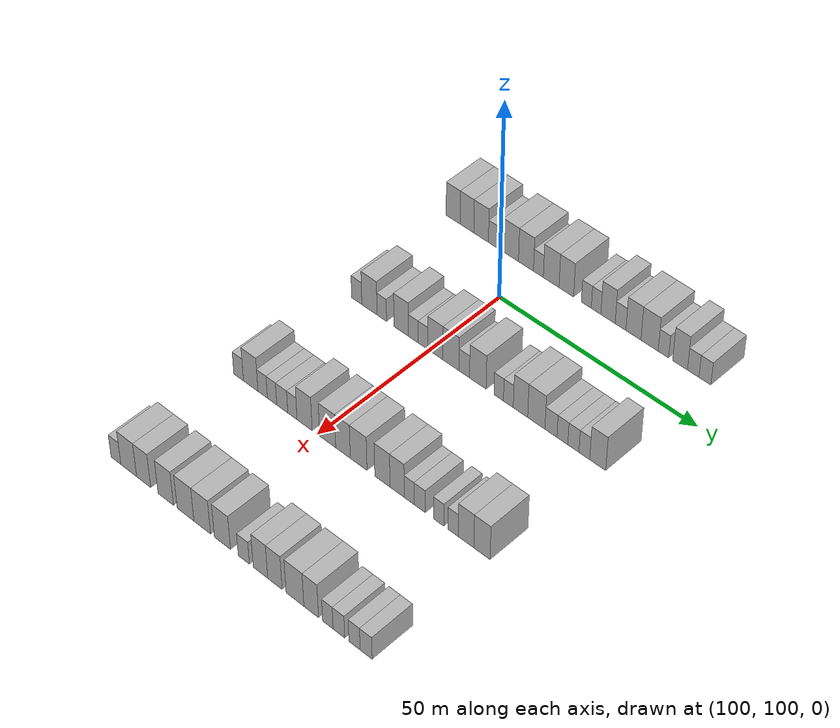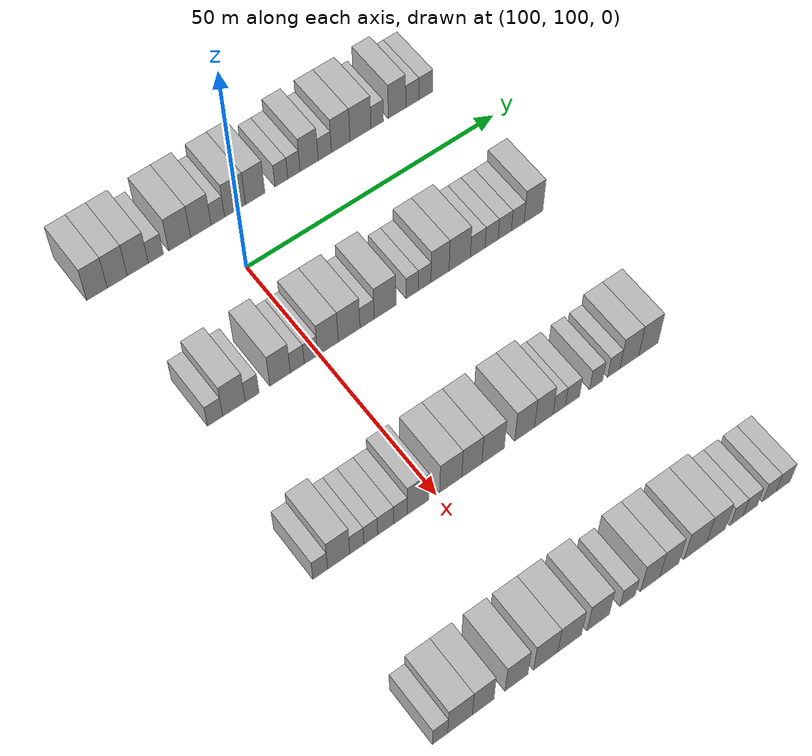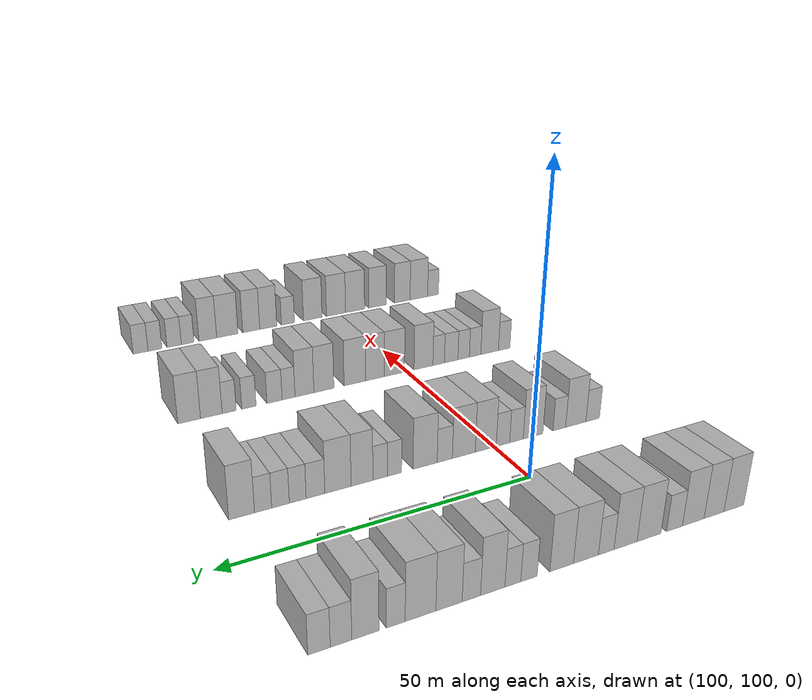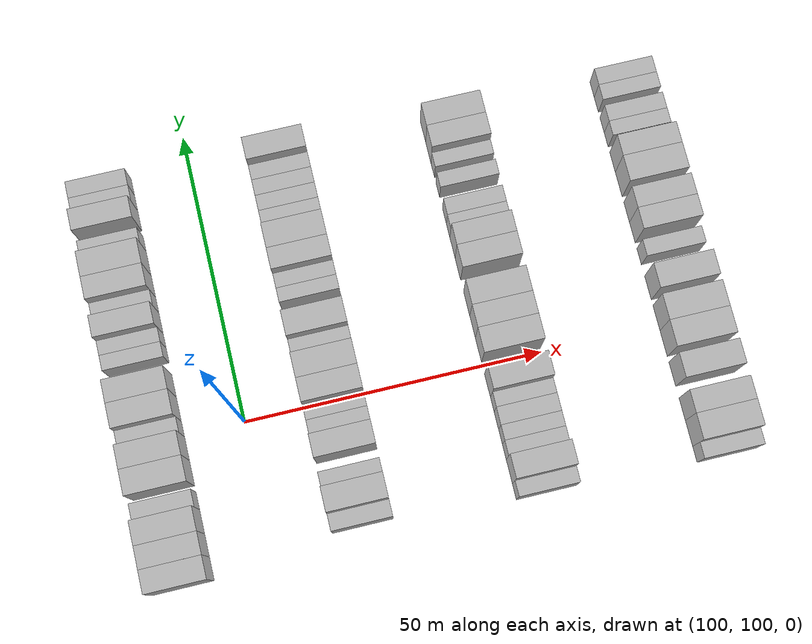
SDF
<sdf version="1.6">
 <world name="default">
  <model name="building_593">
   <static>1</static>
   <pose>85.0000 78.1926 0 0.000000 0.000000 0.000000</pose>
   <link name="link">
    <pose>0 0 4.50 0 0 0</pose>
    <collision name="collision"><geometry><box><size>10.0000 3.8364 9.0000</size></box></geometry></collision>
    <visual name="visual">
     <cast_shadows>0</cast_shadows>
     <geometry><box><size>10.0000 3.8364 9.0000</size></box></geometry>
     <material>
      <script>
       <uri>model://HANNAS_wall/materials/scripts</uri>
       <uri>model://HANNAS_wall/materials/textures</uri>
       <name>vrc/HANNAS_wall</name>
      </script>
     </material>
    </visual>
   </link>
  </model>
  <model name="building_594">
   <static>1</static>
   <pose>85.0000 81.9840 0 0.000000 0.000000 0.000000</pose>
   <link name="link">
    <pose>0 0 4.50 0 0 0</pose>
    <collision name="collision"><geometry><box><size>10.0000 3.7462 9.0000</size></box></geometry></collision>
    <visual name="visual">
     <cast_shadows>0</cast_shadows>
     <geometry><box><size>10.0000 3.7462 9.0000</size></box></geometry>
     <material>
      <script>
       <uri>model://HANNAS_wall/materials/scripts</uri>
       <uri>model://HANNAS_wall/materials/textures</uri>
       <name>vrc/HANNAS_wall</name>
      </script>
     </material>
    </visual>
   </link>
  </model>
  <model name="building_595">
   <static>1</static>
   <pose>85.0000 85.8545 0 0.000000 0.000000 0.000000</pose>
   <link name="link">
    <pose>0 0 4.50 0 0 0</pose>
    <collision name="collision"><geometry><box><size>10.0000 3.9948 9.0000</size></box></geometry></collision>
    <visual name="visual">
     <cast_shadows>0</cast_shadows>
     <geometry><box><size>10.0000 3.9948 9.0000</size></box></geometry>
     <material>
      <script>
       <uri>model://HANNAS_wall/materials/scripts</uri>
       <uri>model://HANNAS_wall/materials/textures</uri>
       <name>vrc/HANNAS_wall</name>
      </script>
     </material>
    </visual>
   </link>
  </model>
  <model name="building_596">
   <static>1</static>
   <pose>85.0000 89.2899 0 0.000000 0.000000 0.000000</pose>
   <link name="link">
    <pose>0 0 3.00 0 0 0</pose>
    <collision name="collision"><geometry><box><size>10.0000 2.8761 6.0000</size></box></geometry></collision>
    <visual name="visual">
     <cast_shadows>0</cast_shadows>
     <geometry><box><size>10.0000 2.8761 6.0000</size></box></geometry>
     <material>
      <script>
       <uri>model://HANNAS_wall/materials/scripts</uri>
       <uri>model://HANNAS_wall/materials/textures</uri>
       <name>vrc/HANNAS_wall</name>
      </script>
     </material>
    </visual>
   </link>
  </model>
  <model name="building_597">
   <static>1</static>
   <pose>85.0000 93.8392 0 0.000000 0.000000 0.000000</pose>
   <link name="link">
    <pose>0 0 4.50 0 0 0</pose>
    <collision name="collision"><geometry><box><size>10.0000 4.2224 9.0000</size></box></geometry></collision>
    <visual name="visual">
     <cast_shadows>0</cast_shadows>
     <geometry><box><size>10.0000 4.2224 9.0000</size></box></geometry>
     <material>
      <script>
       <uri>model://HANNAS_wall/materials/scripts</uri>
       <uri>model://HANNAS_wall/materials/textures</uri>
       <name>vrc/HANNAS_wall</name>
      </script>
     </material>
    </visual>
   </link>
  </model>
  <model name="building_598">
   <static>1</static>
   <pose>85.0000 97.9377 0 0.000000 0.000000 0.000000</pose>
   <link name="link">
    <pose>0 0 4.50 0 0 0</pose>
    <collision name="collision"><geometry><box><size>10.0000 3.9747 9.0000</size></box></geometry></collision>
    <visual name="visual">
     <cast_shadows>0</cast_shadows>
     <geometry><box><size>10.0000 3.9747 9.0000</size></box></geometry>
     <material>
      <script>
       <uri>model://HANNAS_wall/materials/scripts</uri>
       <uri>model://HANNAS_wall/materials/textures</uri>
       <name>vrc/HANNAS_wall</name>
      </script>
     </material>
    </visual>
   </link>
  </model>
  <model name="building_599">
   <static>1</static>
   <pose>85.0000 101.2335 0 0.000000 0.000000 0.000000</pose>
   <link name="link">
    <pose>0 0 3.00 0 0 0</pose>
    <collision name="collision"><geometry><box><size>10.0000 2.6170 6.0000</size></box></geometry></collision>
    <visual name="visual">
     <cast_shadows>0</cast_shadows>
     <geometry><box><size>10.0000 2.6170 6.0000</size></box></geometry>
     <material>
      <script>
       <uri>model://HANNAS_wall/materials/scripts</uri>
       <uri>model://HANNAS_wall/materials/textures</uri>
       <name>vrc/HANNAS_wall</name>
      </script>
     </material>
    </visual>
   </link>
  </model>
  <model name="building_600">
   <static>1</static>
   <pose>85.0000 104.6037 0 0.000000 0.000000 0.000000</pose>
   <link name="link">
    <pose>0 0 4.50 0 0 0</pose>
    <collision name="collision"><geometry><box><size>10.0000 4.1233 9.0000</size></box></geometry></collision>
    <visual name="visual">
     <cast_shadows>0</cast_shadows>
     <geometry><box><size>10.0000 4.1233 9.0000</size></box></geometry>
     <material>
      <script>
       <uri>model://HANNAS_wall/materials/scripts</uri>
       <uri>model://HANNAS_wall/materials/textures</uri>
       <name>vrc/HANNAS_wall</name>
      </script>
     </material>
    </visual>
   </link>
  </model>
  <model name="building_601">
   <static>1</static>
   <pose>85.0000 108.5740 0 0.000000 0.000000 0.000000</pose>
   <link name="link">
    <pose>0 0 4.50 0 0 0</pose>
    <collision name="collision"><geometry><box><size>10.0000 3.8174 9.0000</size></box></geometry></collision>
    <visual name="visual">
     <cast_shadows>0</cast_shadows>
     <geometry><box><size>10.0000 3.8174 9.0000</size></box></geometry>
     <material>
      <script>
       <uri>model://HANNAS_wall/materials/scripts</uri>
       <uri>model://HANNAS_wall/materials/textures</uri>
       <name>vrc/HANNAS_wall</name>
      </script>
     </material>
    </visual>
   </link>
  </model>
  <model name="building_602">
   <static>1</static>
   <pose>85.0000 113.7601 0 0.000000 0.000000 0.000000</pose>
   <link name="link">
    <pose>0 0 3.00 0 0 0</pose>
    <collision name="collision"><geometry><box><size>10.0000 2.5548 6.0000</size></box></geometry></collision>
    <visual name="visual">
     <cast_shadows>0</cast_shadows>
     <geometry><box><size>10.0000 2.5548 6.0000</size></box></geometry>
     <material>
      <script>
       <uri>model://HANNAS_wall/materials/scripts</uri>
       <uri>model://HANNAS_wall/materials/textures</uri>
       <name>vrc/HANNAS_wall</name>
      </script>
     </material>
    </visual>
   </link>
  </model>
  <model name="building_603">
   <static>1</static>
   <pose>85.0000 116.2626 0 0.000000 0.000000 0.000000</pose>
   <link name="link">
    <pose>0 0 3.00 0 0 0</pose>
    <collision name="collision"><geometry><box><size>10.0000 2.4502 6.0000</size></box></geometry></collision>
    <visual name="visual">
     <cast_shadows>0</cast_shadows>
     <geometry><box><size>10.0000 2.4502 6.0000</size></box></geometry>
     <material>
      <script>
       <uri>model://HANNAS_wall/materials/scripts</uri>
       <uri>model://HANNAS_wall/materials/textures</uri>
       <name>vrc/HANNAS_wall</name>
      </script>
     </material>
    </visual>
   </link>
  </model>
  <model name="building_604">
   <static>1</static>
   <pose>85.0000 119.3193 0 0.000000 0.000000 0.000000</pose>
   <link name="link">
    <pose>0 0 4.50 0 0 0</pose>
    <collision name="collision"><geometry><box><size>10.0000 3.6633 9.0000</size></box></geometry></collision>
    <visual name="visual">
     <cast_shadows>0</cast_shadows>
     <geometry><box><size>10.0000 3.6633 9.0000</size></box></geometry>
     <material>
      <script>
       <uri>model://HANNAS_wall/materials/scripts</uri>
       <uri>model://HANNAS_wall/materials/textures</uri>
       <name>vrc/HANNAS_wall</name>
      </script>
     </material>
    </visual>
   </link>
  </model>
  <model name="building_605">
   <static>1</static>
   <pose>85.0000 122.5096 0 0.000000 0.000000 0.000000</pose>
   <link name="link">
    <pose>0 0 3.00 0 0 0</pose>
    <collision name="collision"><geometry><box><size>10.0000 2.7173 6.0000</size></box></geometry></collision>
    <visual name="visual">
     <cast_shadows>0</cast_shadows>
     <geometry><box><size>10.0000 2.7173 6.0000</size></box></geometry>
     <material>
      <script>
       <uri>model://HANNAS_wall/materials/scripts</uri>
       <uri>model://HANNAS_wall/materials/textures</uri>
       <name>vrc/HANNAS_wall</name>
      </script>
     </material>
    </visual>
   </link>
  </model>
  <model name="building_606">
   <static>1</static>
   <pose>85.0000 125.7648 0 0.000000 0.000000 0.000000</pose>
   <link name="link">
    <pose>0 0 4.50 0 0 0</pose>
    <collision name="collision"><geometry><box><size>10.0000 3.7931 9.0000</size></box></geometry></collision>
    <visual name="visual">
     <cast_shadows>0</cast_shadows>
     <geometry><box><size>10.0000 3.7931 9.0000</size></box></geometry>
     <material>
      <script>
       <uri>model://HANNAS_wall/materials/scripts</uri>
       <uri>model://HANNAS_wall/materials/textures</uri>
       <name>vrc/HANNAS_wall</name>
      </script>
     </material>
    </visual>
   </link>
  </model>
  <model name="building_607">
   <static>1</static>
   <pose>85.0000 129.8227 0 0.000000 0.000000 0.000000</pose>
   <link name="link">
    <pose>0 0 4.50 0 0 0</pose>
    <collision name="collision"><geometry><box><size>10.0000 4.3227 9.0000</size></box></geometry></collision>
    <visual name="visual">
     <cast_shadows>0</cast_shadows>
     <geometry><box><size>10.0000 4.3227 9.0000</size></box></geometry>
     <material>
      <script>
       <uri>model://HANNAS_wall/materials/scripts</uri>
       <uri>model://HANNAS_wall/materials/textures</uri>
       <name>vrc/HANNAS_wall</name>
      </script>
     </material>
    </visual>
   </link>
  </model>
  <model name="building_608">
   <static>1</static>
   <pose>85.0000 133.2764 0 0.000000 0.000000 0.000000</pose>
   <link name="link">
    <pose>0 0 3.00 0 0 0</pose>
    <collision name="collision"><geometry><box><size>10.0000 2.5848 6.0000</size></box></geometry></collision>
    <visual name="visual">
     <cast_shadows>0</cast_shadows>
     <geometry><box><size>10.0000 2.5848 6.0000</size></box></geometry>
     <material>
      <script>
       <uri>model://HANNAS_wall/materials/scripts</uri>
       <uri>model://HANNAS_wall/materials/textures</uri>
       <name>vrc/HANNAS_wall</name>
      </script>
     </material>
    </visual>
   </link>
  </model>
  <model name="building_609">
   <static>1</static>
   <pose>85.0000 137.3921 0 0.000000 0.000000 0.000000</pose>
   <link name="link">
    <pose>0 0 4.50 0 0 0</pose>
    <collision name="collision"><geometry><box><size>10.0000 3.6466 9.0000</size></box></geometry></collision>
    <visual name="visual">
     <cast_shadows>0</cast_shadows>
     <geometry><box><size>10.0000 3.6466 9.0000</size></box></geometry>
     <material>
      <script>
       <uri>model://HANNAS_wall/materials/scripts</uri>
       <uri>model://HANNAS_wall/materials/textures</uri>
       <name>vrc/HANNAS_wall</name>
      </script>
     </material>
    </visual>
   </link>
  </model>
  <model name="building_610">
   <static>1</static>
   <pose>85.0000 140.6232 0 0.000000 0.000000 0.000000</pose>
   <link name="link">
    <pose>0 0 3.00 0 0 0</pose>
    <collision name="collision"><geometry><box><size>10.0000 2.8156 6.0000</size></box></geometry></collision>
    <visual name="visual">
     <cast_shadows>0</cast_shadows>
     <geometry><box><size>10.0000 2.8156 6.0000</size></box></geometry>
     <material>
      <script>
       <uri>model://HANNAS_wall/materials/scripts</uri>
       <uri>model://HANNAS_wall/materials/textures</uri>
       <name>vrc/HANNAS_wall</name>
      </script>
     </material>
    </visual>
   </link>
  </model>
  <model name="building_611">
   <static>1</static>
   <pose>85.0000 143.4702 0 0.000000 0.000000 0.000000</pose>
   <link name="link">
    <pose>0 0 3.00 0 0 0</pose>
    <collision name="collision"><geometry><box><size>10.0000 2.8785 6.0000</size></box></geometry></collision>
    <visual name="visual">
     <cast_shadows>0</cast_shadows>
     <geometry><box><size>10.0000 2.8785 6.0000</size></box></geometry>
     <material>
      <script>
       <uri>model://HANNAS_wall/materials/scripts</uri>
       <uri>model://HANNAS_wall/materials/textures</uri>
       <name>vrc/HANNAS_wall</name>
      </script>
     </material>
    </visual>
   </link>
  </model>
  <model name="building_825">
   <static>1</static>
   <pose>115.0000 80.5398 0 0.000000 0.000000 0.000000</pose>
   <link name="link">
    <pose>0 0 3.00 0 0 0</pose>
    <collision name="collision"><geometry><box><size>10.0000 2.7964 6.0000</size></box></geometry></collision>
    <visual name="visual">
     <cast_shadows>0</cast_shadows>
     <geometry><box><size>10.0000 2.7964 6.0000</size></box></geometry>
     <material>
      <script>
       <uri>model://HANNAS_wall/materials/scripts</uri>
       <uri>model://HANNAS_wall/materials/textures</uri>
       <name>vrc/HANNAS_wall</name>
      </script>
     </material>
    </visual>
   </link>
  </model>
  <model name="building_826">
   <static>1</static>
   <pose>115.0000 84.0176 0 0.000000 0.000000 0.000000</pose>
   <link name="link">
    <pose>0 0 4.50 0 0 0</pose>
    <collision name="collision"><geometry><box><size>10.0000 4.1591 9.0000</size></box></geometry></collision>
    <visual name="visual">
     <cast_shadows>0</cast_shadows>
     <geometry><box><size>10.0000 4.1591 9.0000</size></box></geometry>
     <material>
      <script>
       <uri>model://HANNAS_wall/materials/scripts</uri>
       <uri>model://HANNAS_wall/materials/textures</uri>
       <name>vrc/HANNAS_wall</name>
      </script>
     </material>
    </visual>
   </link>
  </model>
  <model name="building_827">
   <static>1</static>
   <pose>115.0000 87.3795 0 0.000000 0.000000 0.000000</pose>
   <link name="link">
    <pose>0 0 3.00 0 0 0</pose>
    <collision name="collision"><geometry><box><size>10.0000 2.5647 6.0000</size></box></geometry></collision>
    <visual name="visual">
     <cast_shadows>0</cast_shadows>
     <geometry><box><size>10.0000 2.5647 6.0000</size></box></geometry>
     <material>
      <script>
       <uri>model://HANNAS_wall/materials/scripts</uri>
       <uri>model://HANNAS_wall/materials/textures</uri>
       <name>vrc/HANNAS_wall</name>
      </script>
     </material>
    </visual>
   </link>
  </model>
  <model name="building_828">
   <static>1</static>
   <pose>115.0000 92.5906 0 0.000000 0.000000 0.000000</pose>
   <link name="link">
    <pose>0 0 4.50 0 0 0</pose>
    <collision name="collision"><geometry><box><size>10.0000 3.8575 9.0000</size></box></geometry></collision>
    <visual name="visual">
     <cast_shadows>0</cast_shadows>
     <geometry><box><size>10.0000 3.8575 9.0000</size></box></geometry>
     <material>
      <script>
       <uri>model://HANNAS_wall/materials/scripts</uri>
       <uri>model://HANNAS_wall/materials/textures</uri>
       <name>vrc/HANNAS_wall</name>
      </script>
     </material>
    </visual>
   </link>
  </model>
  <model name="building_829">
   <static>1</static>
   <pose>115.0000 95.8326 0 0.000000 0.000000 0.000000</pose>
   <link name="link">
    <pose>0 0 3.00 0 0 0</pose>
    <collision name="collision"><geometry><box><size>10.0000 2.6265 6.0000</size></box></geometry></collision>
    <visual name="visual">
     <cast_shadows>0</cast_shadows>
     <geometry><box><size>10.0000 2.6265 6.0000</size></box></geometry>
     <material>
      <script>
       <uri>model://HANNAS_wall/materials/scripts</uri>
       <uri>model://HANNAS_wall/materials/textures</uri>
       <name>vrc/HANNAS_wall</name>
      </script>
     </material>
    </visual>
   </link>
  </model>
  <model name="building_830">
   <static>1</static>
   <pose>115.0000 98.4275 0 0.000000 0.000000 0.000000</pose>
   <link name="link">
    <pose>0 0 3.00 0 0 0</pose>
    <collision name="collision"><geometry><box><size>10.0000 2.5635 6.0000</size></box></geometry></collision>
    <visual name="visual">
     <cast_shadows>0</cast_shadows>
     <geometry><box><size>10.0000 2.5635 6.0000</size></box></geometry>
     <material>
      <script>
       <uri>model://HANNAS_wall/materials/scripts</uri>
       <uri>model://HANNAS_wall/materials/textures</uri>
       <name>vrc/HANNAS_wall</name>
      </script>
     </material>
    </visual>
   </link>
  </model>
  <model name="building_831">
   <static>1</static>
   <pose>115.0000 101.6805 0 0.000000 0.000000 0.000000</pose>
   <link name="link">
    <pose>0 0 4.50 0 0 0</pose>
    <collision name="collision"><geometry><box><size>10.0000 3.9424 9.0000</size></box></geometry></collision>
    <visual name="visual">
     <cast_shadows>0</cast_shadows>
     <geometry><box><size>10.0000 3.9424 9.0000</size></box></geometry>
     <material>
      <script>
       <uri>model://HANNAS_wall/materials/scripts</uri>
       <uri>model://HANNAS_wall/materials/textures</uri>
       <name>vrc/HANNAS_wall</name>
      </script>
     </material>
    </visual>
   </link>
  </model>
  <model name="building_832">
   <static>1</static>
   <pose>115.0000 105.7479 0 0.000000 0.000000 0.000000</pose>
   <link name="link">
    <pose>0 0 4.50 0 0 0</pose>
    <collision name="collision"><geometry><box><size>10.0000 4.1924 9.0000</size></box></geometry></collision>
    <visual name="visual">
     <cast_shadows>0</cast_shadows>
     <geometry><box><size>10.0000 4.1924 9.0000</size></box></geometry>
     <material>
      <script>
       <uri>model://HANNAS_wall/materials/scripts</uri>
       <uri>model://HANNAS_wall/materials/textures</uri>
       <name>vrc/HANNAS_wall</name>
      </script>
     </material>
    </visual>
   </link>
  </model>
  <model name="building_833">
   <static>1</static>
   <pose>115.0000 109.2181 0 0.000000 0.000000 0.000000</pose>
   <link name="link">
    <pose>0 0 3.00 0 0 0</pose>
    <collision name="collision"><geometry><box><size>10.0000 2.7480 6.0000</size></box></geometry></collision>
    <visual name="visual">
     <cast_shadows>0</cast_shadows>
     <geometry><box><size>10.0000 2.7480 6.0000</size></box></geometry>
     <material>
      <script>
       <uri>model://HANNAS_wall/materials/scripts</uri>
       <uri>model://HANNAS_wall/materials/textures</uri>
       <name>vrc/HANNAS_wall</name>
      </script>
     </material>
    </visual>
   </link>
  </model>
  <model name="building_834">
   <static>1</static>
   <pose>115.0000 112.7290 0 0.000000 0.000000 0.000000</pose>
   <link name="link">
    <pose>0 0 4.50 0 0 0</pose>
    <collision name="collision"><geometry><box><size>10.0000 4.2738 9.0000</size></box></geometry></collision>
    <visual name="visual">
     <cast_shadows>0</cast_shadows>
     <geometry><box><size>10.0000 4.2738 9.0000</size></box></geometry>
     <material>
      <script>
       <uri>model://HANNAS_wall/materials/scripts</uri>
       <uri>model://HANNAS_wall/materials/textures</uri>
       <name>vrc/HANNAS_wall</name>
      </script>
     </material>
    </visual>
   </link>
  </model>
  <model name="building_835">
   <static>1</static>
   <pose>115.0000 118.0733 0 0.000000 0.000000 0.000000</pose>
   <link name="link">
    <pose>0 0 3.00 0 0 0</pose>
    <collision name="collision"><geometry><box><size>10.0000 2.4148 6.0000</size></box></geometry></collision>
    <visual name="visual">
     <cast_shadows>0</cast_shadows>
     <geometry><box><size>10.0000 2.4148 6.0000</size></box></geometry>
     <material>
      <script>
       <uri>model://HANNAS_wall/materials/scripts</uri>
       <uri>model://HANNAS_wall/materials/textures</uri>
       <name>vrc/HANNAS_wall</name>
      </script>
     </material>
    </visual>
   </link>
  </model>
  <model name="building_836">
   <static>1</static>
   <pose>115.0000 120.5264 0 0.000000 0.000000 0.000000</pose>
   <link name="link">
    <pose>0 0 3.00 0 0 0</pose>
    <collision name="collision"><geometry><box><size>10.0000 2.4913 6.0000</size></box></geometry></collision>
    <visual name="visual">
     <cast_shadows>0</cast_shadows>
     <geometry><box><size>10.0000 2.4913 6.0000</size></box></geometry>
     <material>
      <script>
       <uri>model://HANNAS_wall/materials/scripts</uri>
       <uri>model://HANNAS_wall/materials/textures</uri>
       <name>vrc/HANNAS_wall</name>
      </script>
     </material>
    </visual>
   </link>
  </model>
  <model name="building_837">
   <static>1</static>
   <pose>115.0000 123.5885 0 0.000000 0.000000 0.000000</pose>
   <link name="link">
    <pose>0 0 4.50 0 0 0</pose>
    <collision name="collision"><geometry><box><size>10.0000 3.6329 9.0000</size></box></geometry></collision>
    <visual name="visual">
     <cast_shadows>0</cast_shadows>
     <geometry><box><size>10.0000 3.6329 9.0000</size></box></geometry>
     <material>
      <script>
       <uri>model://HANNAS_wall/materials/scripts</uri>
       <uri>model://HANNAS_wall/materials/textures</uri>
       <name>vrc/HANNAS_wall</name>
      </script>
     </material>
    </visual>
   </link>
  </model>
  <model name="building_838">
   <static>1</static>
   <pose>115.0000 127.5510 0 0.000000 0.000000 0.000000</pose>
   <link name="link">
    <pose>0 0 4.50 0 0 0</pose>
    <collision name="collision"><geometry><box><size>10.0000 4.2920 9.0000</size></box></geometry></collision>
    <visual name="visual">
     <cast_shadows>0</cast_shadows>
     <geometry><box><size>10.0000 4.2920 9.0000</size></box></geometry>
     <material>
      <script>
       <uri>model://HANNAS_wall/materials/scripts</uri>
       <uri>model://HANNAS_wall/materials/textures</uri>
       <name>vrc/HANNAS_wall</name>
      </script>
     </material>
    </visual>
   </link>
  </model>
  <model name="building_839">
   <static>1</static>
   <pose>115.0000 131.1942 0 0.000000 0.000000 0.000000</pose>
   <link name="link">
    <pose>0 0 3.00 0 0 0</pose>
    <collision name="collision"><geometry><box><size>10.0000 2.9946 6.0000</size></box></geometry></collision>
    <visual name="visual">
     <cast_shadows>0</cast_shadows>
     <geometry><box><size>10.0000 2.9946 6.0000</size></box></geometry>
     <material>
      <script>
       <uri>model://HANNAS_wall/materials/scripts</uri>
       <uri>model://HANNAS_wall/materials/textures</uri>
       <name>vrc/HANNAS_wall</name>
      </script>
     </material>
    </visual>
   </link>
  </model>
  <model name="building_840">
   <static>1</static>
   <pose>115.0000 134.0180 0 0.000000 0.000000 0.000000</pose>
   <link name="link">
    <pose>0 0 3.00 0 0 0</pose>
    <collision name="collision"><geometry><box><size>10.0000 2.6530 6.0000</size></box></geometry></collision>
    <visual name="visual">
     <cast_shadows>0</cast_shadows>
     <geometry><box><size>10.0000 2.6530 6.0000</size></box></geometry>
     <material>
      <script>
       <uri>model://HANNAS_wall/materials/scripts</uri>
       <uri>model://HANNAS_wall/materials/textures</uri>
       <name>vrc/HANNAS_wall</name>
      </script>
     </material>
    </visual>
   </link>
  </model>
  <model name="building_841">
   <static>1</static>
   <pose>115.0000 136.7103 0 0.000000 0.000000 0.000000</pose>
   <link name="link">
    <pose>0 0 3.00 0 0 0</pose>
    <collision name="collision"><geometry><box><size>10.0000 2.7317 6.0000</size></box></geometry></collision>
    <visual name="visual">
     <cast_shadows>0</cast_shadows>
     <geometry><box><size>10.0000 2.7317 6.0000</size></box></geometry>
     <material>
      <script>
       <uri>model://HANNAS_wall/materials/scripts</uri>
       <uri>model://HANNAS_wall/materials/textures</uri>
       <name>vrc/HANNAS_wall</name>
      </script>
     </material>
    </visual>
   </link>
  </model>
  <model name="building_842">
   <static>1</static>
   <pose>115.0000 139.3892 0 0.000000 0.000000 0.000000</pose>
   <link name="link">
    <pose>0 0 3.00 0 0 0</pose>
    <collision name="collision"><geometry><box><size>10.0000 2.6261 6.0000</size></box></geometry></collision>
    <visual name="visual">
     <cast_shadows>0</cast_shadows>
     <geometry><box><size>10.0000 2.6261 6.0000</size></box></geometry>
     <material>
      <script>
       <uri>model://HANNAS_wall/materials/scripts</uri>
       <uri>model://HANNAS_wall/materials/textures</uri>
       <name>vrc/HANNAS_wall</name>
      </script>
     </material>
    </visual>
   </link>
  </model>
  <model name="building_843">
   <static>1</static>
   <pose>115.0000 142.6411 0 0.000000 0.000000 0.000000</pose>
   <link name="link">
    <pose>0 0 4.50 0 0 0</pose>
    <collision name="collision"><geometry><box><size>10.0000 3.8777 9.0000</size></box></geometry></collision>
    <visual name="visual">
     <cast_shadows>0</cast_shadows>
     <geometry><box><size>10.0000 3.8777 9.0000</size></box></geometry>
     <material>
      <script>
       <uri>model://HANNAS_wall/materials/scripts</uri>
       <uri>model://HANNAS_wall/materials/textures</uri>
       <name>vrc/HANNAS_wall</name>
      </script>
     </material>
    </visual>
   </link>
  </model>
  <model name="building_1050">
   <static>1</static>
   <pose>145.0000 78.7910 0 0.000000 0.000000 0.000000</pose>
   <link name="link">
    <pose>0 0 3.00 0 0 0</pose>
    <collision name="collision"><geometry><box><size>10.0000 2.6321 6.0000</size></box></geometry></collision>
    <visual name="visual">
     <cast_shadows>0</cast_shadows>
     <geometry><box><size>10.0000 2.6321 6.0000</size></box></geometry>
     <material>
      <script>
       <uri>model://HANNAS_wall/materials/scripts</uri>
       <uri>model://HANNAS_wall/materials/textures</uri>
       <name>vrc/HANNAS_wall</name>
      </script>
     </material>
    </visual>
   </link>
  </model>
  <model name="building_1051">
   <static>1</static>
   <pose>145.0000 82.1066 0 0.000000 0.000000 0.000000</pose>
   <link name="link">
    <pose>0 0 4.50 0 0 0</pose>
    <collision name="collision"><geometry><box><size>10.0000 3.9990 9.0000</size></box></geometry></collision>
    <visual name="visual">
     <cast_shadows>0</cast_shadows>
     <geometry><box><size>10.0000 3.9990 9.0000</size></box></geometry>
     <material>
      <script>
       <uri>model://HANNAS_wall/materials/scripts</uri>
       <uri>model://HANNAS_wall/materials/textures</uri>
       <name>vrc/HANNAS_wall</name>
      </script>
     </material>
    </visual>
   </link>
  </model>
  <model name="building_1052">
   <static>1</static>
   <pose>145.0000 85.3793 0 0.000000 0.000000 0.000000</pose>
   <link name="link">
    <pose>0 0 3.00 0 0 0</pose>
    <collision name="collision"><geometry><box><size>10.0000 2.5466 6.0000</size></box></geometry></collision>
    <visual name="visual">
     <cast_shadows>0</cast_shadows>
     <geometry><box><size>10.0000 2.5466 6.0000</size></box></geometry>
     <material>
      <script>
       <uri>model://HANNAS_wall/materials/scripts</uri>
       <uri>model://HANNAS_wall/materials/textures</uri>
       <name>vrc/HANNAS_wall</name>
      </script>
     </material>
    </visual>
   </link>
  </model>
  <model name="building_1053">
   <static>1</static>
   <pose>145.0000 87.9102 0 0.000000 0.000000 0.000000</pose>
   <link name="link">
    <pose>0 0 3.00 0 0 0</pose>
    <collision name="collision"><geometry><box><size>10.0000 2.5150 6.0000</size></box></geometry></collision>
    <visual name="visual">
     <cast_shadows>0</cast_shadows>
     <geometry><box><size>10.0000 2.5150 6.0000</size></box></geometry>
     <material>
      <script>
       <uri>model://HANNAS_wall/materials/scripts</uri>
       <uri>model://HANNAS_wall/materials/textures</uri>
       <name>vrc/HANNAS_wall</name>
      </script>
     </material>
    </visual>
   </link>
  </model>
  <model name="building_1054">
   <static>1</static>
   <pose>145.0000 90.6519 0 0.000000 0.000000 0.000000</pose>
   <link name="link">
    <pose>0 0 3.00 0 0 0</pose>
    <collision name="collision"><geometry><box><size>10.0000 2.9685 6.0000</size></box></geometry></collision>
    <visual name="visual">
     <cast_shadows>0</cast_shadows>
     <geometry><box><size>10.0000 2.9685 6.0000</size></box></geometry>
     <material>
      <script>
       <uri>model://HANNAS_wall/materials/scripts</uri>
       <uri>model://HANNAS_wall/materials/textures</uri>
       <name>vrc/HANNAS_wall</name>
      </script>
     </material>
    </visual>
   </link>
  </model>
  <model name="building_1055">
   <static>1</static>
   <pose>145.0000 93.3738 0 0.000000 0.000000 0.000000</pose>
   <link name="link">
    <pose>0 0 3.00 0 0 0</pose>
    <collision name="collision"><geometry><box><size>10.0000 2.4752 6.0000</size></box></geometry></collision>
    <visual name="visual">
     <cast_shadows>0</cast_shadows>
     <geometry><box><size>10.0000 2.4752 6.0000</size></box></geometry>
     <material>
      <script>
       <uri>model://HANNAS_wall/materials/scripts</uri>
       <uri>model://HANNAS_wall/materials/textures</uri>
       <name>vrc/HANNAS_wall</name>
      </script>
     </material>
    </visual>
   </link>
  </model>
  <model name="building_1056">
   <static>1</static>
   <pose>145.0000 96.6139 0 0.000000 0.000000 0.000000</pose>
   <link name="link">
    <pose>0 0 4.50 0 0 0</pose>
    <collision name="collision"><geometry><box><size>10.0000 4.0051 9.0000</size></box></geometry></collision>
    <visual name="visual">
     <cast_shadows>0</cast_shadows>
     <geometry><box><size>10.0000 4.0051 9.0000</size></box></geometry>
     <material>
      <script>
       <uri>model://HANNAS_wall/materials/scripts</uri>
       <uri>model://HANNAS_wall/materials/textures</uri>
       <name>vrc/HANNAS_wall</name>
      </script>
     </material>
    </visual>
   </link>
  </model>
  <model name="building_1057">
   <static>1</static>
   <pose>145.0000 102.7092 0 0.000000 0.000000 0.000000</pose>
   <link name="link">
    <pose>0 0 4.50 0 0 0</pose>
    <collision name="collision"><geometry><box><size>10.0000 4.1854 9.0000</size></box></geometry></collision>
    <visual name="visual">
     <cast_shadows>0</cast_shadows>
     <geometry><box><size>10.0000 4.1854 9.0000</size></box></geometry>
     <material>
      <script>
       <uri>model://HANNAS_wall/materials/scripts</uri>
       <uri>model://HANNAS_wall/materials/textures</uri>
       <name>vrc/HANNAS_wall</name>
      </script>
     </material>
    </visual>
   </link>
  </model>
  <model name="building_1058">
   <static>1</static>
   <pose>145.0000 106.7057 0 0.000000 0.000000 0.000000</pose>
   <link name="link">
    <pose>0 0 4.50 0 0 0</pose>
    <collision name="collision"><geometry><box><size>10.0000 3.8076 9.0000</size></box></geometry></collision>
    <visual name="visual">
     <cast_shadows>0</cast_shadows>
     <geometry><box><size>10.0000 3.8076 9.0000</size></box></geometry>
     <material>
      <script>
       <uri>model://HANNAS_wall/materials/scripts</uri>
       <uri>model://HANNAS_wall/materials/textures</uri>
       <name>vrc/HANNAS_wall</name>
      </script>
     </material>
    </visual>
   </link>
  </model>
  <model name="building_1059">
   <static>1</static>
   <pose>145.0000 110.7586 0 0.000000 0.000000 0.000000</pose>
   <link name="link">
    <pose>0 0 4.50 0 0 0</pose>
    <collision name="collision"><geometry><box><size>10.0000 4.2982 9.0000</size></box></geometry></collision>
    <visual name="visual">
     <cast_shadows>0</cast_shadows>
     <geometry><box><size>10.0000 4.2982 9.0000</size></box></geometry>
     <material>
      <script>
       <uri>model://HANNAS_wall/materials/scripts</uri>
       <uri>model://HANNAS_wall/materials/textures</uri>
       <name>vrc/HANNAS_wall</name>
      </script>
     </material>
    </visual>
   </link>
  </model>
  <model name="building_1060">
   <static>1</static>
   <pose>145.0000 116.8406 0 0.000000 0.000000 0.000000</pose>
   <link name="link">
    <pose>0 0 4.50 0 0 0</pose>
    <collision name="collision"><geometry><box><size>10.0000 3.8657 9.0000</size></box></geometry></collision>
    <visual name="visual">
     <cast_shadows>0</cast_shadows>
     <geometry><box><size>10.0000 3.8657 9.0000</size></box></geometry>
     <material>
      <script>
       <uri>model://HANNAS_wall/materials/scripts</uri>
       <uri>model://HANNAS_wall/materials/textures</uri>
       <name>vrc/HANNAS_wall</name>
      </script>
     </material>
    </visual>
   </link>
  </model>
  <model name="building_1061">
   <static>1</static>
   <pose>145.0000 120.5787 0 0.000000 0.000000 0.000000</pose>
   <link name="link">
    <pose>0 0 4.50 0 0 0</pose>
    <collision name="collision"><geometry><box><size>10.0000 3.6107 9.0000</size></box></geometry></collision>
    <visual name="visual">
     <cast_shadows>0</cast_shadows>
     <geometry><box><size>10.0000 3.6107 9.0000</size></box></geometry>
     <material>
      <script>
       <uri>model://HANNAS_wall/materials/scripts</uri>
       <uri>model://HANNAS_wall/materials/textures</uri>
       <name>vrc/HANNAS_wall</name>
      </script>
     </material>
    </visual>
   </link>
  </model>
  <model name="building_1062">
   <static>1</static>
   <pose>145.0000 123.5969 0 0.000000 0.000000 0.000000</pose>
   <link name="link">
    <pose>0 0 3.00 0 0 0</pose>
    <collision name="collision"><geometry><box><size>10.0000 2.4257 6.0000</size></box></geometry></collision>
    <visual name="visual">
     <cast_shadows>0</cast_shadows>
     <geometry><box><size>10.0000 2.4257 6.0000</size></box></geometry>
     <material>
      <script>
       <uri>model://HANNAS_wall/materials/scripts</uri>
       <uri>model://HANNAS_wall/materials/textures</uri>
       <name>vrc/HANNAS_wall</name>
      </script>
     </material>
    </visual>
   </link>
  </model>
  <model name="building_1063">
   <static>1</static>
   <pose>145.0000 126.2180 0 0.000000 0.000000 0.000000</pose>
   <link name="link">
    <pose>0 0 3.00 0 0 0</pose>
    <collision name="collision"><geometry><box><size>10.0000 2.8166 6.0000</size></box></geometry></collision>
    <visual name="visual">
     <cast_shadows>0</cast_shadows>
     <geometry><box><size>10.0000 2.8166 6.0000</size></box></geometry>
     <material>
      <script>
       <uri>model://HANNAS_wall/materials/scripts</uri>
       <uri>model://HANNAS_wall/materials/textures</uri>
       <name>vrc/HANNAS_wall</name>
      </script>
     </material>
    </visual>
   </link>
  </model>
  <model name="building_1064">
   <static>1</static>
   <pose>145.0000 130.9238 0 0.000000 0.000000 0.000000</pose>
   <link name="link">
    <pose>0 0 3.00 0 0 0</pose>
    <collision name="collision"><geometry><box><size>10.0000 2.5950 6.0000</size></box></geometry></collision>
    <visual name="visual">
     <cast_shadows>0</cast_shadows>
     <geometry><box><size>10.0000 2.5950 6.0000</size></box></geometry>
     <material>
      <script>
       <uri>model://HANNAS_wall/materials/scripts</uri>
       <uri>model://HANNAS_wall/materials/textures</uri>
       <name>vrc/HANNAS_wall</name>
      </script>
     </material>
    </visual>
   </link>
  </model>
  <model name="building_1065">
   <static>1</static>
   <pose>145.0000 134.4732 0 0.000000 0.000000 0.000000</pose>
   <link name="link">
    <pose>0 0 3.00 0 0 0</pose>
    <collision name="collision"><geometry><box><size>10.0000 2.5037 6.0000</size></box></geometry></collision>
    <visual name="visual">
     <cast_shadows>0</cast_shadows>
     <geometry><box><size>10.0000 2.5037 6.0000</size></box></geometry>
     <material>
      <script>
       <uri>model://HANNAS_wall/materials/scripts</uri>
       <uri>model://HANNAS_wall/materials/textures</uri>
       <name>vrc/HANNAS_wall</name>
      </script>
     </material>
    </visual>
   </link>
  </model>
  <model name="building_1066">
   <static>1</static>
   <pose>145.0000 137.6283 0 0.000000 0.000000 0.000000</pose>
   <link name="link">
    <pose>0 0 4.50 0 0 0</pose>
    <collision name="collision"><geometry><box><size>10.0000 3.8065 9.0000</size></box></geometry></collision>
    <visual name="visual">
     <cast_shadows>0</cast_shadows>
     <geometry><box><size>10.0000 3.8065 9.0000</size></box></geometry>
     <material>
      <script>
       <uri>model://HANNAS_wall/materials/scripts</uri>
       <uri>model://HANNAS_wall/materials/textures</uri>
       <name>vrc/HANNAS_wall</name>
      </script>
     </material>
    </visual>
   </link>
  </model>
  <model name="building_1067">
   <static>1</static>
   <pose>145.0000 141.4970 0 0.000000 0.000000 0.000000</pose>
   <link name="link">
    <pose>0 0 4.50 0 0 0</pose>
    <collision name="collision"><geometry><box><size>10.0000 3.9311 9.0000</size></box></geometry></collision>
    <visual name="visual">
     <cast_shadows>0</cast_shadows>
     <geometry><box><size>10.0000 3.9311 9.0000</size></box></geometry>
     <material>
      <script>
       <uri>model://HANNAS_wall/materials/scripts</uri>
       <uri>model://HANNAS_wall/materials/textures</uri>
       <name>vrc/HANNAS_wall</name>
      </script>
     </material>
    </visual>
   </link>
  </model>
  <model name="building_1274">
   <static>1</static>
   <pose>175.0000 77.8404 0 0.000000 0.000000 0.000000</pose>
   <link name="link">
    <pose>0 0 3.00 0 0 0</pose>
    <collision name="collision"><geometry><box><size>10.0000 2.6854 6.0000</size></box></geometry></collision>
    <visual name="visual">
     <cast_shadows>0</cast_shadows>
     <geometry><box><size>10.0000 2.6854 6.0000</size></box></geometry>
     <material>
      <script>
       <uri>model://HANNAS_wall/materials/scripts</uri>
       <uri>model://HANNAS_wall/materials/textures</uri>
       <name>vrc/HANNAS_wall</name>
      </script>
     </material>
    </visual>
   </link>
  </model>
  <model name="building_1275">
   <static>1</static>
   <pose>175.0000 81.3489 0 0.000000 0.000000 0.000000</pose>
   <link name="link">
    <pose>0 0 4.50 0 0 0</pose>
    <collision name="collision"><geometry><box><size>10.0000 4.3317 9.0000</size></box></geometry></collision>
    <visual name="visual">
     <cast_shadows>0</cast_shadows>
     <geometry><box><size>10.0000 4.3317 9.0000</size></box></geometry>
     <material>
      <script>
       <uri>model://HANNAS_wall/materials/scripts</uri>
       <uri>model://HANNAS_wall/materials/textures</uri>
       <name>vrc/HANNAS_wall</name>
      </script>
     </material>
    </visual>
   </link>
  </model>
  <model name="building_1276">
   <static>1</static>
   <pose>175.0000 85.4222 0 0.000000 0.000000 0.000000</pose>
   <link name="link">
    <pose>0 0 4.50 0 0 0</pose>
    <collision name="collision"><geometry><box><size>10.0000 3.8149 9.0000</size></box></geometry></collision>
    <visual name="visual">
     <cast_shadows>0</cast_shadows>
     <geometry><box><size>10.0000 3.8149 9.0000</size></box></geometry>
     <material>
      <script>
       <uri>model://HANNAS_wall/materials/scripts</uri>
       <uri>model://HANNAS_wall/materials/textures</uri>
       <name>vrc/HANNAS_wall</name>
      </script>
     </material>
    </visual>
   </link>
  </model>
  <model name="building_1277">
   <static>1</static>
   <pose>175.0000 91.3928 0 0.000000 0.000000 0.000000</pose>
   <link name="link">
    <pose>0 0 4.50 0 0 0</pose>
    <collision name="collision"><geometry><box><size>10.0000 4.1263 9.0000</size></box></geometry></collision>
    <visual name="visual">
     <cast_shadows>0</cast_shadows>
     <geometry><box><size>10.0000 4.1263 9.0000</size></box></geometry>
     <material>
      <script>
       <uri>model://HANNAS_wall/materials/scripts</uri>
       <uri>model://HANNAS_wall/materials/textures</uri>
       <name>vrc/HANNAS_wall</name>
      </script>
     </material>
    </visual>
   </link>
  </model>
  <model name="building_1278">
   <static>1</static>
   <pose>175.0000 96.6777 0 0.000000 0.000000 0.000000</pose>
   <link name="link">
    <pose>0 0 4.50 0 0 0</pose>
    <collision name="collision"><geometry><box><size>10.0000 4.4435 9.0000</size></box></geometry></collision>
    <visual name="visual">
     <cast_shadows>0</cast_shadows>
     <geometry><box><size>10.0000 4.4435 9.0000</size></box></geometry>
     <material>
      <script>
       <uri>model://HANNAS_wall/materials/scripts</uri>
       <uri>model://HANNAS_wall/materials/textures</uri>
       <name>vrc/HANNAS_wall</name>
      </script>
     </material>
    </visual>
   </link>
  </model>
  <model name="building_1279">
   <static>1</static>
   <pose>175.0000 101.0864 0 0.000000 0.000000 0.000000</pose>
   <link name="link">
    <pose>0 0 4.50 0 0 0</pose>
    <collision name="collision"><geometry><box><size>10.0000 4.3740 9.0000</size></box></geometry></collision>
    <visual name="visual">
     <cast_shadows>0</cast_shadows>
     <geometry><box><size>10.0000 4.3740 9.0000</size></box></geometry>
     <material>
      <script>
       <uri>model://HANNAS_wall/materials/scripts</uri>
       <uri>model://HANNAS_wall/materials/textures</uri>
       <name>vrc/HANNAS_wall</name>
      </script>
     </material>
    </visual>
   </link>
  </model>
  <model name="building_1280">
   <static>1</static>
   <pose>175.0000 106.3638 0 0.000000 0.000000 0.000000</pose>
   <link name="link">
    <pose>0 0 4.50 0 0 0</pose>
    <collision name="collision"><geometry><box><size>10.0000 4.1809 9.0000</size></box></geometry></collision>
    <visual name="visual">
     <cast_shadows>0</cast_shadows>
     <geometry><box><size>10.0000 4.1809 9.0000</size></box></geometry>
     <material>
      <script>
       <uri>model://HANNAS_wall/materials/scripts</uri>
       <uri>model://HANNAS_wall/materials/textures</uri>
       <name>vrc/HANNAS_wall</name>
      </script>
     </material>
    </visual>
   </link>
  </model>
  <model name="building_1281">
   <static>1</static>
   <pose>175.0000 111.8817 0 0.000000 0.000000 0.000000</pose>
   <link name="link">
    <pose>0 0 3.00 0 0 0</pose>
    <collision name="collision"><geometry><box><size>10.0000 2.8548 6.0000</size></box></geometry></collision>
    <visual name="visual">
     <cast_shadows>0</cast_shadows>
     <geometry><box><size>10.0000 2.8548 6.0000</size></box></geometry>
     <material>
      <script>
       <uri>model://HANNAS_wall/materials/scripts</uri>
       <uri>model://HANNAS_wall/materials/textures</uri>
       <name>vrc/HANNAS_wall</name>
      </script>
     </material>
    </visual>
   </link>
  </model>
  <model name="building_1282">
   <static>1</static>
   <pose>175.0000 116.1436 0 0.000000 0.000000 0.000000</pose>
   <link name="link">
    <pose>0 0 4.50 0 0 0</pose>
    <collision name="collision"><geometry><box><size>10.0000 3.6692 9.0000</size></box></geometry></collision>
    <visual name="visual">
     <cast_shadows>0</cast_shadows>
     <geometry><box><size>10.0000 3.6692 9.0000</size></box></geometry>
     <material>
      <script>
       <uri>model://HANNAS_wall/materials/scripts</uri>
       <uri>model://HANNAS_wall/materials/textures</uri>
       <name>vrc/HANNAS_wall</name>
      </script>
     </material>
    </visual>
   </link>
  </model>
  <model name="building_1283">
   <static>1</static>
   <pose>175.0000 119.7929 0 0.000000 0.000000 0.000000</pose>
   <link name="link">
    <pose>0 0 4.50 0 0 0</pose>
    <collision name="collision"><geometry><box><size>10.0000 3.6294 9.0000</size></box></geometry></collision>
    <visual name="visual">
     <cast_shadows>0</cast_shadows>
     <geometry><box><size>10.0000 3.6294 9.0000</size></box></geometry>
     <material>
      <script>
       <uri>model://HANNAS_wall/materials/scripts</uri>
       <uri>model://HANNAS_wall/materials/textures</uri>
       <name>vrc/HANNAS_wall</name>
      </script>
     </material>
    </visual>
   </link>
  </model>
  <model name="building_1284">
   <static>1</static>
   <pose>175.0000 124.8278 0 0.000000 0.000000 0.000000</pose>
   <link name="link">
    <pose>0 0 4.50 0 0 0</pose>
    <collision name="collision"><geometry><box><size>10.0000 4.4403 9.0000</size></box></geometry></collision>
    <visual name="visual">
     <cast_shadows>0</cast_shadows>
     <geometry><box><size>10.0000 4.4403 9.0000</size></box></geometry>
     <material>
      <script>
       <uri>model://HANNAS_wall/materials/scripts</uri>
       <uri>model://HANNAS_wall/materials/textures</uri>
       <name>vrc/HANNAS_wall</name>
      </script>
     </material>
    </visual>
   </link>
  </model>
  <model name="building_1285">
   <static>1</static>
   <pose>175.0000 128.8588 0 0.000000 0.000000 0.000000</pose>
   <link name="link">
    <pose>0 0 4.50 0 0 0</pose>
    <collision name="collision"><geometry><box><size>10.0000 3.6217 9.0000</size></box></geometry></collision>
    <visual name="visual">
     <cast_shadows>0</cast_shadows>
     <geometry><box><size>10.0000 3.6217 9.0000</size></box></geometry>
     <material>
      <script>
       <uri>model://HANNAS_wall/materials/scripts</uri>
       <uri>model://HANNAS_wall/materials/textures</uri>
       <name>vrc/HANNAS_wall</name>
      </script>
     </material>
    </visual>
   </link>
  </model>
  <model name="building_1286">
   <static>1</static>
   <pose>175.0000 132.9533 0 0.000000 0.000000 0.000000</pose>
   <link name="link">
    <pose>0 0 3.00 0 0 0</pose>
    <collision name="collision"><geometry><box><size>10.0000 2.5672 6.0000</size></box></geometry></collision>
    <visual name="visual">
     <cast_shadows>0</cast_shadows>
     <geometry><box><size>10.0000 2.5672 6.0000</size></box></geometry>
     <material>
      <script>
       <uri>model://HANNAS_wall/materials/scripts</uri>
       <uri>model://HANNAS_wall/materials/textures</uri>
       <name>vrc/HANNAS_wall</name>
      </script>
     </material>
    </visual>
   </link>
  </model>
  <model name="building_1287">
   <static>1</static>
   <pose>175.0000 135.6596 0 0.000000 0.000000 0.000000</pose>
   <link name="link">
    <pose>0 0 3.00 0 0 0</pose>
    <collision name="collision"><geometry><box><size>10.0000 2.8455 6.0000</size></box></geometry></collision>
    <visual name="visual">
     <cast_shadows>0</cast_shadows>
     <geometry><box><size>10.0000 2.8455 6.0000</size></box></geometry>
     <material>
      <script>
       <uri>model://HANNAS_wall/materials/scripts</uri>
       <uri>model://HANNAS_wall/materials/textures</uri>
       <name>vrc/HANNAS_wall</name>
      </script>
     </material>
    </visual>
   </link>
  </model>
  <model name="building_1288">
   <static>1</static>
   <pose>175.0000 139.4410 0 0.000000 0.000000 0.000000</pose>
   <link name="link">
    <pose>0 0 3.00 0 0 0</pose>
    <collision name="collision"><geometry><box><size>10.0000 2.7172 6.0000</size></box></geometry></collision>
    <visual name="visual">
     <cast_shadows>0</cast_shadows>
     <geometry><box><size>10.0000 2.7172 6.0000</size></box></geometry>
     <material>
      <script>
       <uri>model://HANNAS_wall/materials/scripts</uri>
       <uri>model://HANNAS_wall/materials/textures</uri>
       <name>vrc/HANNAS_wall</name>
      </script>
     </material>
    </visual>
   </link>
  </model>
  <model name="building_1289">
   <static>1</static>
   <pose>175.0000 142.2434 0 0.000000 0.000000 0.000000</pose>
   <link name="link">
    <pose>0 0 3.00 0 0 0</pose>
    <collision name="collision"><geometry><box><size>10.0000 2.8875 6.0000</size></box></geometry></collision>
    <visual name="visual">
     <cast_shadows>0</cast_shadows>
     <geometry><box><size>10.0000 2.8875 6.0000</size></box></geometry>
     <material>
      <script>
       <uri>model://HANNAS_wall/materials/scripts</uri>
       <uri>model://HANNAS_wall/materials/textures</uri>
       <name>vrc/HANNAS_wall</name>
      </script>
     </material>
    </visual>
   </link>
  </model>
 </world>
</sdf>
